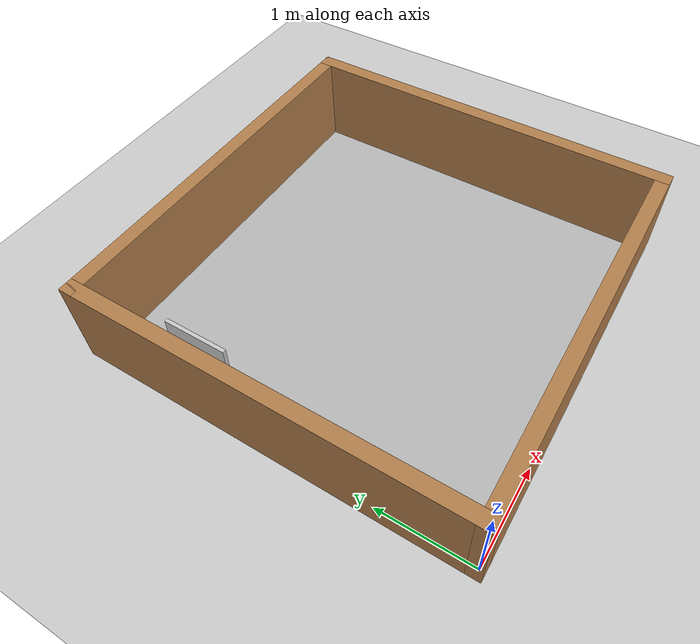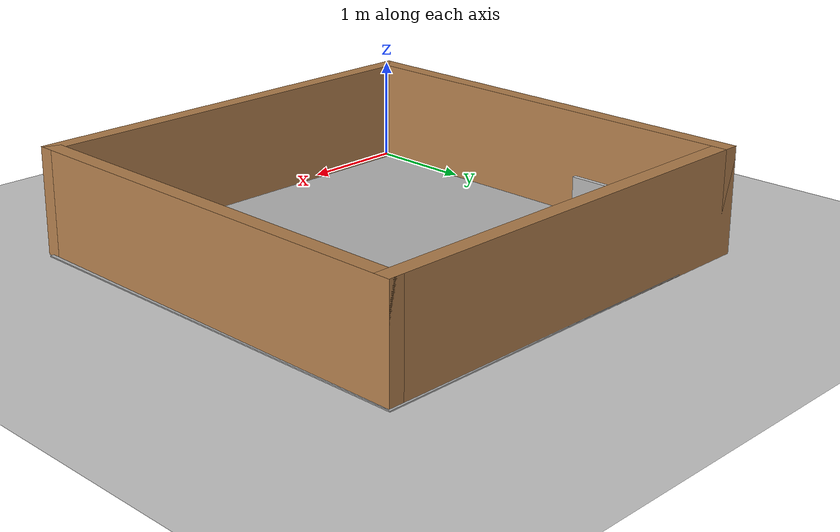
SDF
<sdf version="1.7">
 <world name="default">
  <light name="sun" type="directional">
   <pose>0 0 10 0 -0 0</pose>
   <diffuse>0.8 0.8 0.8 1</diffuse>
   <specular>0.2 0.2 0.2 1</specular>
   <attenuation>
    <range>1000</range>
    <constant>0.9</constant>
    <linear>0.01</linear>
    <quadratic>0.001</quadratic>
   </attenuation>
   <direction>-0.5 0.1 -0.9</direction>
   <spot><inner_angle>0</inner_angle><outer_angle>0</outer_angle><falloff>0</falloff></spot>
  </light>
  <light name="side_light" type="point">
   <pose>3 2 1 0 -0 0</pose>
   <diffuse>1 1 1 1</diffuse>
   <attenuation><linear>0</linear><quadratic>0</quadratic><range>10</range></attenuation>
   <direction>0 0 -1</direction>
   <spot><inner_angle>0</inner_angle><outer_angle>0</outer_angle><falloff>0</falloff></spot>
   <range>5.0</range>
  </light>
  <model name="ground_plane">
   <static>1</static>
   <link name="link">
    <collision name="collision">
     <geometry><plane><normal>0 0 1</normal><size>100 100</size></plane></geometry>
     <surface><friction><ode><mu>100</mu><mu2>50</mu2></ode></friction></surface>
    </collision>
    <visual name="visual">
     <cast_shadows>0</cast_shadows>
     <geometry><plane><normal>0 0 1</normal><size>100 100</size></plane></geometry>
     <material>
      <script><uri>file://media/materials/scripts/gazebo.material</uri><name>Gazebo/Grey</name></script>
     </material>
    </visual>
   </link>
  </model>
  <gravity>0 0 -9.8</gravity>
  <magnetic_field>6e-06 2.3e-05 -4.2e-05</magnetic_field>
  <atmosphere type="adiabatic"/>
  <physics type="ode">
   <max_step_size>0.001</max_step_size>
   <real_time_factor>1</real_time_factor>
   <real_time_update_rate>1000</real_time_update_rate>
  </physics>
  <scene><ambient>0.4 0.4 0.4 1</ambient><background>0.7 0.7 0.7 1</background><shadows>1</shadows></scene>
  <spherical_coordinates>
   <surface_model>EARTH_WGS84</surface_model>
   <latitude_deg>0</latitude_deg>
   <longitude_deg>0</longitude_deg>
   <elevation>0</elevation>
   <heading_deg>0</heading_deg>
  </spherical_coordinates>
  <model name="square.world">
   <pose>2.04333 2.07117 0 0 -0 0</pose>
   <link name="Wall_6">
    <collision name="Wall_6_Collision">
     <geometry><box><size>4.26 0.15 1</size></box></geometry>
     <pose>0 0 0.5 0 -0 0</pose>
    </collision>
    <visual name="Wall_6_Visual">
     <pose>0 0 0.5 0 -0 0</pose>
     <geometry><box><size>4.26 0.15 1</size></box></geometry>
     <material>
      <script><uri>file://media/materials/scripts/gazebo.material</uri><name>Gazebo/Wood</name></script>
      <ambient>1 1 1 1</ambient>
     </material>
     <meta><layer>0</layer></meta>
    </visual>
    <pose>-0 2.05 0 0 -0 0</pose>
   </link>
   <link name="Wall_7">
    <collision name="Wall_7_Collision">
     <geometry><box><size>4.25 0.15 1</size></box></geometry>
     <pose>0 0 0.5 0 -0 0</pose>
    </collision>
    <visual name="Wall_7_Visual">
     <pose>0 0 0.5 0 -0 0</pose>
     <geometry><box><size>4.25 0.15 1</size></box></geometry>
     <material>
      <script><uri>file://media/materials/scripts/gazebo.material</uri><name>Gazebo/Wood</name></script>
      <ambient>1 1 1 1</ambient>
     </material>
     <meta><layer>0</layer></meta>
    </visual>
    <pose>2.055 0 0 0 -0 -1.5708</pose>
   </link>
   <link name="Wall_8">
    <collision name="Wall_8_Collision">
     <geometry><box><size>4.26 0.15 1</size></box></geometry>
     <pose>0 0 0.5 0 -0 0</pose>
    </collision>
    <visual name="Wall_8_Visual">
     <pose>0 0 0.5 0 -0 0</pose>
     <geometry><box><size>4.26 0.15 1</size></box></geometry>
     <material>
      <script><uri>file://media/materials/scripts/gazebo.material</uri><name>Gazebo/Wood</name></script>
      <ambient>1 1 1 1</ambient>
     </material>
     <meta><layer>0</layer></meta>
    </visual>
    <pose>-0 -2.05 0 0 -0 3.14159</pose>
   </link>
   <link name="Wall_9">
    <collision name="Wall_9_Collision">
     <geometry><box><size>4.25 0.15 1</size></box></geometry>
     <pose>0 0 0.5 0 -0 0</pose>
    </collision>
    <visual name="Wall_9_Visual">
     <pose>0 0 0.5 0 -0 0</pose>
     <geometry><box><size>4.25 0.15 1</size></box></geometry>
     <material>
      <script><uri>file://media/materials/scripts/gazebo.material</uri><name>Gazebo/Wood</name></script>
      <ambient>1 1 1 1</ambient>
     </material>
     <meta><layer>0</layer></meta>
    </visual>
    <pose>-2.055 0 0 0 -0 1.5708</pose>
   </link>
   <static>1</static>
  </model>
  <model name="com_map">
   <pose>2.09677 2.10504 0.01 0 0 -1.56457</pose>
   <static>1</static>
   <link name="link">
    <inertial>
     <mass>0.5</mass>
     <inertia><ixx>0.001</ixx><ixy>0</ixy><ixz>0</ixz><iyy>0.001</iyy><iyz>0</iyz><izz>0.001</izz></inertia>
    </inertial>
    <collision name="collision">
     <geometry><box><size>4.2 4.2 0.01</size></box></geometry>
     <max_contacts>100</max_contacts>
    </collision>
    <visual name="visual">
     <cast_shadows>0</cast_shadows>
     <geometry><box><size>4.2 4.2 0.01</size></box></geometry>
     <material>
      <script>
       <uri>model://com_map/materials/scripts</uri>
       <uri>model://com_map/materials/textures</uri>
       <name>MyGround/com_map</name>
      </script>
     </material>
    </visual>
   </link>
  </model>
  <model name="cp">
   <static>1</static>
   <link name="link">
    <visual name="visual"><geometry><mesh><uri>model://cp/meshes/cp.dae</uri></mesh></geometry></visual>
    <collision name="collision"><geometry><box><size>1 0.1 0.5</size></box></geometry></collision>
   </link>
   <pose>0.35285 3.15453 0.003512 0.039923 0.000771 1.57397</pose>
  </model>
 </world>
</sdf>
